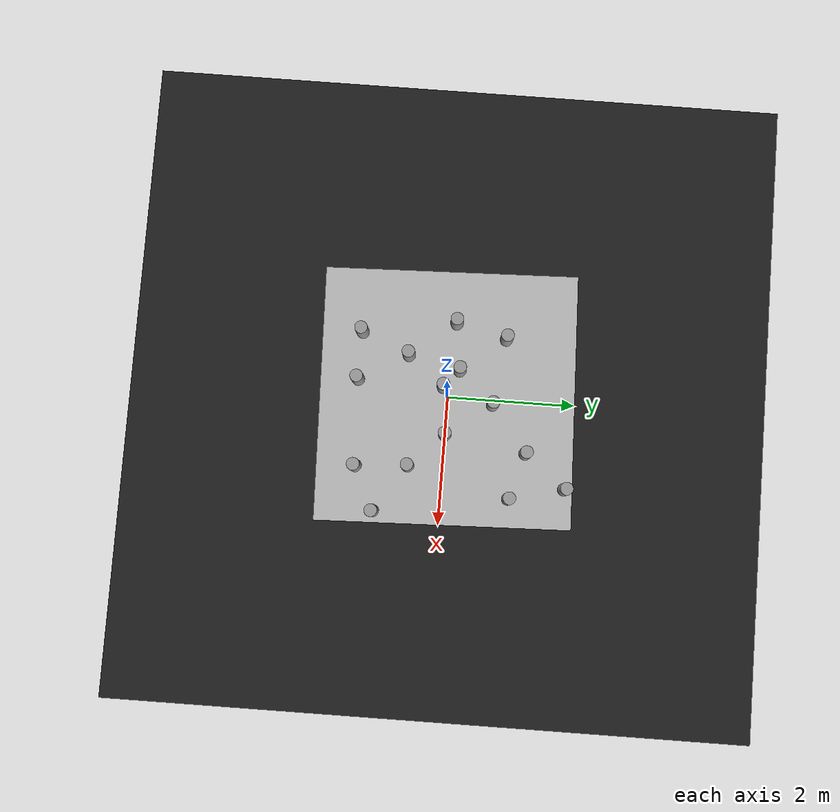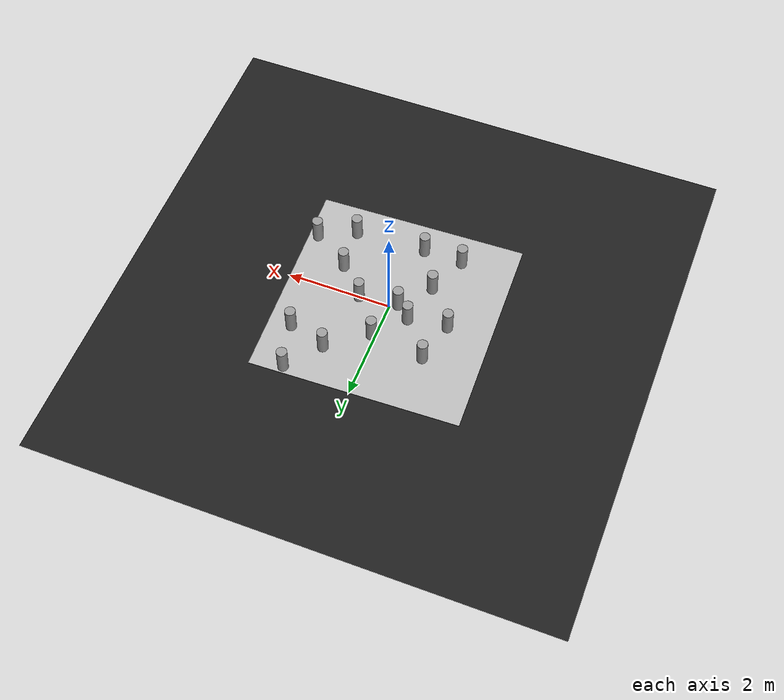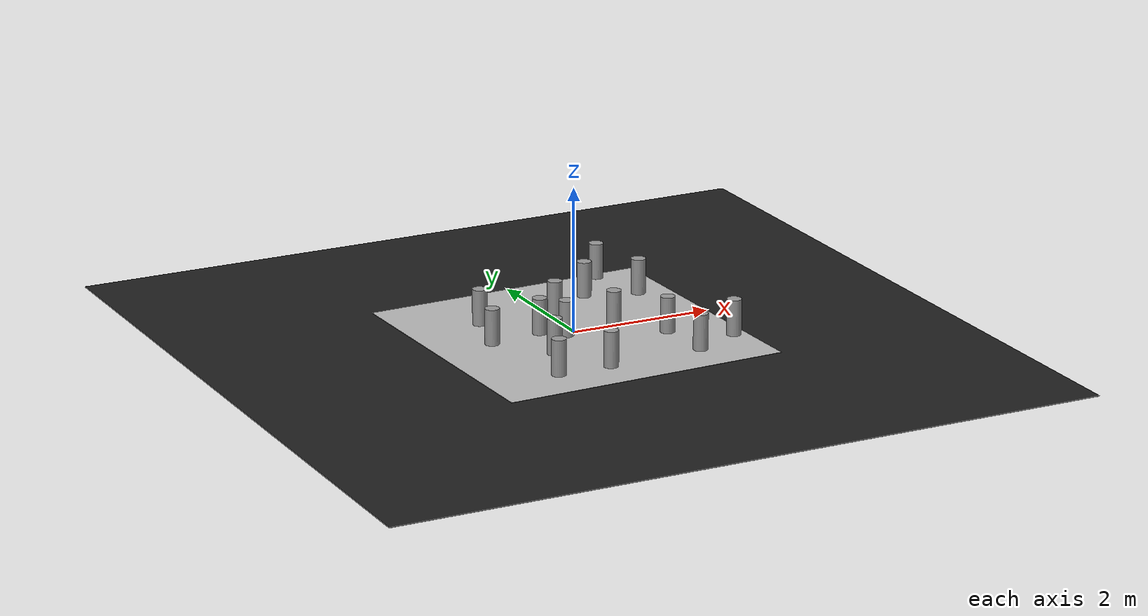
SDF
<sdf version="1.6">
 <world name="default">
  <scene>
   <ambient>0 0 0 1</ambient>
   <shadows>0</shadows>
   <grid>0</grid>
   <background>0.7 0.7 0.7 1</background>
  </scene>
  <model name="course">
   <static>1</static>
   <link name="course_link">
    <collision name="course_collision">
     <geometry><plane><normal>0 0 1</normal><size>4 4</size></plane></geometry>
     <surface><friction><ode><mu>100</mu><mu2>50</mu2></ode></friction></surface>
    </collision>
    <visual name="course_visual">
     <cast_shadows>0</cast_shadows>
     <geometry><plane><normal>0 0 1</normal><size>4 4</size></plane></geometry>
     <material>
      <script>
       <uri>model://turtlebot3_autorace/course/materials/scripts</uri>
       <uri>model://turtlebot3_autorace/course/materials/textures</uri>
       <name>course</name>
      </script>
     </material>
    </visual>
   </link>
   <pose>0 0 0 0 0 -1.54</pose>
  </model>
  <light name="sun" type="directional">
   <pose>0 0 10 0 -0 0</pose>
   <diffuse>0.8 0.8 0.8 1</diffuse>
   <specular>0.1 0.1 0.1 1</specular>
   <attenuation>
    <range>1000</range>
    <constant>0.9</constant>
    <linear>0.01</linear>
    <quadratic>0.001</quadratic>
   </attenuation>
   <direction>-0.5 0.5 -1</direction>
  </light>
  <model name="ground2">
   <pose>0 0 -0.1 0 -0 0</pose>
   <static>1</static>
   <link name="ground">
    <collision name="ground_coll"><geometry><box><size>8 8 0.01</size></box></geometry></collision>
    <visual name="ground_vis">
     <geometry><box><size>10 10 0.01</size></box></geometry>
     <material>
      <script><uri>file://media/materials/scripts/gazebo.material</uri><name>Gazebo/FlatBlack</name></script>
     </material>
    </visual>
   </link>
  </model>
  <gravity>0 0 -9.8</gravity>
  <magnetic_field>6e-06 2.3e-05 -4.2e-05</magnetic_field>
  <atmosphere type="adiabatic"/>
  <physics name="default_physics" default="0" type="ode">
   <max_step_size>0.001</max_step_size>
   <real_time_factor>1</real_time_factor>
   <real_time_update_rate>1000</real_time_update_rate>
  </physics>
  <spherical_coordinates>
   <surface_model>EARTH_WGS84</surface_model>
   <latitude_deg>0</latitude_deg>
   <longitude_deg>0</longitude_deg>
   <elevation>0</elevation>
   <heading_deg>0</heading_deg>
  </spherical_coordinates>
  <light name="user_point_light_2" type="point">
   <pose>-0.948146 0.604519 1 0 -0 0</pose>
   <diffuse>0.5 0.5 0.5 1</diffuse>
   <specular>0.1 0.1 0.1 1</specular>
   <attenuation>
    <range>20</range>
    <constant>0.5</constant>
    <linear>0.01</linear>
    <quadratic>0.001</quadratic>
   </attenuation>
   <cast_shadows>0</cast_shadows>
   <direction>0 0 -1</direction>
  </light>
  <light name="user_point_light_6" type="point">
   <pose>1.63854 1.69565 1 0 -0 0</pose>
   <diffuse>0.5 0.5 0.5 1</diffuse>
   <specular>0.1 0.1 0.1 1</specular>
   <attenuation>
    <range>20</range>
    <constant>0.5</constant>
    <linear>0.01</linear>
    <quadratic>0.001</quadratic>
   </attenuation>
   <cast_shadows>0</cast_shadows>
   <direction>0 0 -1</direction>
  </light>
  <light name="user_point_light_7" type="point">
   <pose>0.42 -3.31 1 0 -0 0</pose>
   <diffuse>0.5 0.5 0.5 1</diffuse>
   <specular>0.1 0.1 0.1 1</specular>
   <attenuation>
    <range>20</range>
    <constant>0.5</constant>
    <linear>0.01</linear>
    <quadratic>0.001</quadratic>
   </attenuation>
   <cast_shadows>0</cast_shadows>
   <direction>0 0 -1</direction>
  </light>
  <light name="user_point_light_8" type="point">
   <pose>-1.8 1.5 1 0 -0 0</pose>
   <diffuse>0.5 0.5 0.5 1</diffuse>
   <specular>0.1 0.1 0.1 1</specular>
   <attenuation>
    <range>20</range>
    <constant>0.5</constant>
    <linear>0.01</linear>
    <quadratic>0.001</quadratic>
   </attenuation>
   <cast_shadows>0</cast_shadows>
   <direction>0 0 -1</direction>
  </light>
  <model name="tunnel_occ_2_1">
   <link name="link_0_clone_clone">
    <pose>0.42322 -0.212034 0.25 0 -0 0</pose>
    <inertial>
     <mass>0.0416663</mass>
     <inertia>
      <ixx>0.00098188</ixx>
      <ixy>0</ixy>
      <ixz>0</ixz>
      <iyy>0.00098188</iyy>
      <iyz>0</iyz>
      <izz>0.00046751</izz>
     </inertia>
    </inertial>
    <visual name="visual">
     <geometry><cylinder><radius>0.1</radius><length>0.5</length></cylinder></geometry>
     <material>
      <lighting>1</lighting>
      <script><uri>file://media/materials/scripts/gazebo.material</uri><name>Gazebo/Grey</name></script>
      <ambient>0.3 0.3 0.3 1</ambient>
      <diffuse>0.7 0.7 0.7 1</diffuse>
      <specular>0.01 0.01 0.01 1</specular>
      <emissive>0 0 0 1</emissive>
      <shader type="pixel"><normal_map>__default__</normal_map></shader>
     </material>
    </visual>
    <collision name="collision">
     <geometry><cylinder><radius>0.1</radius><length>0.46418</length></cylinder></geometry>
     <surface>
      <friction>
       <ode><mu>1</mu><mu2>1</mu2><fdir1>0 0 0</fdir1><slip1>0</slip1><slip2>0</slip2></ode>
       <torsional>
        <coefficient>1</coefficient>
        <patch_radius>0</patch_radius>
        <surface_radius>0</surface_radius>
        <use_patch_radius>1</use_patch_radius>
        <ode><slip>0</slip></ode>
       </torsional>
      </friction>
      <bounce><restitution_coefficient>0</restitution_coefficient><threshold>1e+06</threshold></bounce>
      <contact>
       <collide_without_contact>0</collide_without_contact>
       <collide_without_contact_bitmask>1</collide_without_contact_bitmask>
       <collide_bitmask>1</collide_bitmask>
       <ode>
        <soft_cfm>0</soft_cfm>
        <soft_erp>0.2</soft_erp>
        <kp>1e+13</kp>
        <kd>1</kd>
        <max_vel>0.01</max_vel>
        <min_depth>0</min_depth>
       </ode>
       <bullet>
        <split_impulse>1</split_impulse>
        <split_impulse_penetration_threshold>-0.01</split_impulse_penetration_threshold>
        <soft_cfm>0</soft_cfm>
        <soft_erp>0.2</soft_erp>
        <kp>1e+13</kp>
        <kd>1</kd>
       </bullet>
      </contact>
     </surface>
    </collision>
   </link>
   <link name="link_0_clone_clone_clone">
    <pose>-0.323729 -0.287563 0.25 0 -0 0</pose>
    <inertial>
     <mass>0.0416663</mass>
     <inertia>
      <ixx>0.00098188</ixx>
      <ixy>0</ixy>
      <ixz>0</ixz>
      <iyy>0.00098188</iyy>
      <iyz>0</iyz>
      <izz>0.00046751</izz>
     </inertia>
    </inertial>
    <visual name="visual">
     <geometry><cylinder><radius>0.1</radius><length>0.5</length></cylinder></geometry>
     <material>
      <lighting>1</lighting>
      <script><uri>file://media/materials/scripts/gazebo.material</uri><name>Gazebo/Grey</name></script>
      <ambient>0.3 0.3 0.3 1</ambient>
      <diffuse>0.7 0.7 0.7 1</diffuse>
      <specular>0.01 0.01 0.01 1</specular>
      <emissive>0 0 0 1</emissive>
      <shader type="pixel"><normal_map>__default__</normal_map></shader>
     </material>
    </visual>
    <collision name="collision">
     <geometry><cylinder><radius>0.1</radius><length>0.46418</length></cylinder></geometry>
     <surface>
      <friction>
       <ode><mu>1</mu><mu2>1</mu2><fdir1>0 0 0</fdir1><slip1>0</slip1><slip2>0</slip2></ode>
       <torsional>
        <coefficient>1</coefficient>
        <patch_radius>0</patch_radius>
        <surface_radius>0</surface_radius>
        <use_patch_radius>1</use_patch_radius>
        <ode><slip>0</slip></ode>
       </torsional>
      </friction>
      <bounce><restitution_coefficient>0</restitution_coefficient><threshold>1e+06</threshold></bounce>
      <contact>
       <collide_without_contact>0</collide_without_contact>
       <collide_without_contact_bitmask>1</collide_without_contact_bitmask>
       <collide_bitmask>1</collide_bitmask>
       <ode>
        <soft_cfm>0</soft_cfm>
        <soft_erp>0.2</soft_erp>
        <kp>1e+13</kp>
        <kd>1</kd>
        <max_vel>0.01</max_vel>
        <min_depth>0</min_depth>
       </ode>
       <bullet>
        <split_impulse>1</split_impulse>
        <split_impulse_penetration_threshold>-0.01</split_impulse_penetration_threshold>
        <soft_cfm>0</soft_cfm>
        <soft_erp>0.2</soft_erp>
        <kp>1e+13</kp>
        <kd>1</kd>
       </bullet>
      </contact>
     </surface>
    </collision>
   </link>
   <link name="link_0_clone_clone_clone_clone">
    <pose>-0.099492 0.499594 0.25 0 -0 0</pose>
    <inertial>
     <mass>0.0416663</mass>
     <inertia>
      <ixx>0.00098188</ixx>
      <ixy>0</ixy>
      <ixz>0</ixz>
      <iyy>0.00098188</iyy>
      <iyz>0</iyz>
      <izz>0.00046751</izz>
     </inertia>
    </inertial>
    <visual name="visual">
     <geometry><cylinder><radius>0.1</radius><length>0.5</length></cylinder></geometry>
     <material>
      <lighting>1</lighting>
      <script><uri>file://media/materials/scripts/gazebo.material</uri><name>Gazebo/Grey</name></script>
      <ambient>0.3 0.3 0.3 1</ambient>
      <diffuse>0.7 0.7 0.7 1</diffuse>
      <specular>0.01 0.01 0.01 1</specular>
      <emissive>0 0 0 1</emissive>
      <shader type="pixel"><normal_map>__default__</normal_map></shader>
     </material>
    </visual>
    <collision name="collision">
     <geometry><cylinder><radius>0.1</radius><length>0.46418</length></cylinder></geometry>
     <surface>
      <friction>
       <ode><mu>1</mu><mu2>1</mu2><fdir1>0 0 0</fdir1><slip1>0</slip1><slip2>0</slip2></ode>
       <torsional>
        <coefficient>1</coefficient>
        <patch_radius>0</patch_radius>
        <surface_radius>0</surface_radius>
        <use_patch_radius>1</use_patch_radius>
        <ode><slip>0</slip></ode>
       </torsional>
      </friction>
      <bounce><restitution_coefficient>0</restitution_coefficient><threshold>1e+06</threshold></bounce>
      <contact>
       <collide_without_contact>0</collide_without_contact>
       <collide_without_contact_bitmask>1</collide_without_contact_bitmask>
       <collide_bitmask>1</collide_bitmask>
       <ode>
        <soft_cfm>0</soft_cfm>
        <soft_erp>0.2</soft_erp>
        <kp>1e+13</kp>
        <kd>1</kd>
        <max_vel>0.01</max_vel>
        <min_depth>0</min_depth>
       </ode>
       <bullet>
        <split_impulse>1</split_impulse>
        <split_impulse_penetration_threshold>-0.01</split_impulse_penetration_threshold>
        <soft_cfm>0</soft_cfm>
        <soft_erp>0.2</soft_erp>
        <kp>1e+13</kp>
        <kd>1</kd>
       </bullet>
      </contact>
     </surface>
    </collision>
   </link>
   <static>1</static>
   <pose>0.173078 0.217761 0 0 -0 0</pose>
  </model>
  <audio><device>default</device></audio>
  <model name="tunnel_occ_2_1_clone">
   <link name="link_0_clone_clone">
    <pose>0.42322 -0.212034 0.25 0 -0 0</pose>
    <inertial>
     <mass>0.0416663</mass>
     <inertia>
      <ixx>0.00098188</ixx>
      <ixy>0</ixy>
      <ixz>0</ixz>
      <iyy>0.00098188</iyy>
      <iyz>0</iyz>
      <izz>0.00046751</izz>
     </inertia>
    </inertial>
    <visual name="visual">
     <geometry><cylinder><radius>0.1</radius><length>0.5</length></cylinder></geometry>
     <material>
      <lighting>1</lighting>
      <script><uri>file://media/materials/scripts/gazebo.material</uri><name>Gazebo/Grey</name></script>
      <ambient>0.3 0.3 0.3 1</ambient>
      <diffuse>0.7 0.7 0.7 1</diffuse>
      <specular>0.01 0.01 0.01 1</specular>
      <emissive>0 0 0 1</emissive>
      <shader type="pixel"><normal_map>__default__</normal_map></shader>
     </material>
    </visual>
    <collision name="collision">
     <geometry><cylinder><radius>0.1</radius><length>0.46418</length></cylinder></geometry>
     <surface>
      <friction>
       <ode><mu>1</mu><mu2>1</mu2><fdir1>0 0 0</fdir1><slip1>0</slip1><slip2>0</slip2></ode>
       <torsional>
        <coefficient>1</coefficient>
        <patch_radius>0</patch_radius>
        <surface_radius>0</surface_radius>
        <use_patch_radius>1</use_patch_radius>
        <ode><slip>0</slip></ode>
       </torsional>
      </friction>
      <bounce><restitution_coefficient>0</restitution_coefficient><threshold>1e+06</threshold></bounce>
      <contact>
       <collide_without_contact>0</collide_without_contact>
       <collide_without_contact_bitmask>1</collide_without_contact_bitmask>
       <collide_bitmask>1</collide_bitmask>
       <ode>
        <soft_cfm>0</soft_cfm>
        <soft_erp>0.2</soft_erp>
        <kp>1e+13</kp>
        <kd>1</kd>
        <max_vel>0.01</max_vel>
        <min_depth>0</min_depth>
       </ode>
       <bullet>
        <split_impulse>1</split_impulse>
        <split_impulse_penetration_threshold>-0.01</split_impulse_penetration_threshold>
        <soft_cfm>0</soft_cfm>
        <soft_erp>0.2</soft_erp>
        <kp>1e+13</kp>
        <kd>1</kd>
       </bullet>
      </contact>
     </surface>
    </collision>
   </link>
   <link name="link_0_clone_clone_clone">
    <pose>-0.323729 -0.287563 0.25 0 -0 0</pose>
    <inertial>
     <mass>0.0416663</mass>
     <inertia>
      <ixx>0.00098188</ixx>
      <ixy>0</ixy>
      <ixz>0</ixz>
      <iyy>0.00098188</iyy>
      <iyz>0</iyz>
      <izz>0.00046751</izz>
     </inertia>
    </inertial>
    <visual name="visual">
     <geometry><cylinder><radius>0.1</radius><length>0.5</length></cylinder></geometry>
     <material>
      <lighting>1</lighting>
      <script><uri>file://media/materials/scripts/gazebo.material</uri><name>Gazebo/Grey</name></script>
      <ambient>0.3 0.3 0.3 1</ambient>
      <diffuse>0.7 0.7 0.7 1</diffuse>
      <specular>0.01 0.01 0.01 1</specular>
      <emissive>0 0 0 1</emissive>
      <shader type="pixel"><normal_map>__default__</normal_map></shader>
     </material>
    </visual>
    <collision name="collision">
     <geometry><cylinder><radius>0.1</radius><length>0.46418</length></cylinder></geometry>
     <surface>
      <friction>
       <ode><mu>1</mu><mu2>1</mu2><fdir1>0 0 0</fdir1><slip1>0</slip1><slip2>0</slip2></ode>
       <torsional>
        <coefficient>1</coefficient>
        <patch_radius>0</patch_radius>
        <surface_radius>0</surface_radius>
        <use_patch_radius>1</use_patch_radius>
        <ode><slip>0</slip></ode>
       </torsional>
      </friction>
      <bounce><restitution_coefficient>0</restitution_coefficient><threshold>1e+06</threshold></bounce>
      <contact>
       <collide_without_contact>0</collide_without_contact>
       <collide_without_contact_bitmask>1</collide_without_contact_bitmask>
       <collide_bitmask>1</collide_bitmask>
       <ode>
        <soft_cfm>0</soft_cfm>
        <soft_erp>0.2</soft_erp>
        <kp>1e+13</kp>
        <kd>1</kd>
        <max_vel>0.01</max_vel>
        <min_depth>0</min_depth>
       </ode>
       <bullet>
        <split_impulse>1</split_impulse>
        <split_impulse_penetration_threshold>-0.01</split_impulse_penetration_threshold>
        <soft_cfm>0</soft_cfm>
        <soft_erp>0.2</soft_erp>
        <kp>1e+13</kp>
        <kd>1</kd>
       </bullet>
      </contact>
     </surface>
    </collision>
   </link>
   <link name="link_0_clone_clone_clone_clone">
    <pose>-0.099492 0.499594 0.25 0 -0 0</pose>
    <inertial>
     <mass>0.0416663</mass>
     <inertia>
      <ixx>0.00098188</ixx>
      <ixy>0</ixy>
      <ixz>0</ixz>
      <iyy>0.00098188</iyy>
      <iyz>0</iyz>
      <izz>0.00046751</izz>
     </inertia>
    </inertial>
    <visual name="visual">
     <geometry><cylinder><radius>0.1</radius><length>0.5</length></cylinder></geometry>
     <material>
      <lighting>1</lighting>
      <script><uri>file://media/materials/scripts/gazebo.material</uri><name>Gazebo/Grey</name></script>
      <ambient>0.3 0.3 0.3 1</ambient>
      <diffuse>0.7 0.7 0.7 1</diffuse>
      <specular>0.01 0.01 0.01 1</specular>
      <emissive>0 0 0 1</emissive>
      <shader type="pixel"><normal_map>__default__</normal_map></shader>
     </material>
    </visual>
    <collision name="collision">
     <geometry><cylinder><radius>0.1</radius><length>0.46418</length></cylinder></geometry>
     <surface>
      <friction>
       <ode><mu>1</mu><mu2>1</mu2><fdir1>0 0 0</fdir1><slip1>0</slip1><slip2>0</slip2></ode>
       <torsional>
        <coefficient>1</coefficient>
        <patch_radius>0</patch_radius>
        <surface_radius>0</surface_radius>
        <use_patch_radius>1</use_patch_radius>
        <ode><slip>0</slip></ode>
       </torsional>
      </friction>
      <bounce><restitution_coefficient>0</restitution_coefficient><threshold>1e+06</threshold></bounce>
      <contact>
       <collide_without_contact>0</collide_without_contact>
       <collide_without_contact_bitmask>1</collide_without_contact_bitmask>
       <collide_bitmask>1</collide_bitmask>
       <ode>
        <soft_cfm>0</soft_cfm>
        <soft_erp>0.2</soft_erp>
        <kp>1e+13</kp>
        <kd>1</kd>
        <max_vel>0.01</max_vel>
        <min_depth>0</min_depth>
       </ode>
       <bullet>
        <split_impulse>1</split_impulse>
        <split_impulse_penetration_threshold>-0.01</split_impulse_penetration_threshold>
        <soft_cfm>0</soft_cfm>
        <soft_erp>0.2</soft_erp>
        <kp>1e+13</kp>
        <kd>1</kd>
       </bullet>
      </contact>
     </surface>
    </collision>
   </link>
   <static>1</static>
   <pose>-0.575488 -1.14887 0 0 0 -0.119062</pose>
  </model>
  <model name="tunnel_occ_2_1_clone_0">
   <link name="link_0_clone_clone">
    <pose>0.42322 -0.212034 0.25 0 -0 0</pose>
    <inertial>
     <mass>0.0416663</mass>
     <inertia>
      <ixx>0.00098188</ixx>
      <ixy>0</ixy>
      <ixz>0</ixz>
      <iyy>0.00098188</iyy>
      <iyz>0</iyz>
      <izz>0.00046751</izz>
     </inertia>
    </inertial>
    <visual name="visual">
     <geometry><cylinder><radius>0.1</radius><length>0.5</length></cylinder></geometry>
     <material>
      <lighting>1</lighting>
      <script><uri>file://media/materials/scripts/gazebo.material</uri><name>Gazebo/Grey</name></script>
      <ambient>0.3 0.3 0.3 1</ambient>
      <diffuse>0.7 0.7 0.7 1</diffuse>
      <specular>0.01 0.01 0.01 1</specular>
      <emissive>0 0 0 1</emissive>
      <shader type="pixel"><normal_map>__default__</normal_map></shader>
     </material>
    </visual>
    <collision name="collision">
     <geometry><cylinder><radius>0.1</radius><length>0.46418</length></cylinder></geometry>
     <surface>
      <friction>
       <ode><mu>1</mu><mu2>1</mu2><fdir1>0 0 0</fdir1><slip1>0</slip1><slip2>0</slip2></ode>
       <torsional>
        <coefficient>1</coefficient>
        <patch_radius>0</patch_radius>
        <surface_radius>0</surface_radius>
        <use_patch_radius>1</use_patch_radius>
        <ode><slip>0</slip></ode>
       </torsional>
      </friction>
      <bounce><restitution_coefficient>0</restitution_coefficient><threshold>1e+06</threshold></bounce>
      <contact>
       <collide_without_contact>0</collide_without_contact>
       <collide_without_contact_bitmask>1</collide_without_contact_bitmask>
       <collide_bitmask>1</collide_bitmask>
       <ode>
        <soft_cfm>0</soft_cfm>
        <soft_erp>0.2</soft_erp>
        <kp>1e+13</kp>
        <kd>1</kd>
        <max_vel>0.01</max_vel>
        <min_depth>0</min_depth>
       </ode>
       <bullet>
        <split_impulse>1</split_impulse>
        <split_impulse_penetration_threshold>-0.01</split_impulse_penetration_threshold>
        <soft_cfm>0</soft_cfm>
        <soft_erp>0.2</soft_erp>
        <kp>1e+13</kp>
        <kd>1</kd>
       </bullet>
      </contact>
     </surface>
    </collision>
   </link>
   <link name="link_0_clone_clone_clone">
    <pose>-0.323729 -0.287563 0.25 0 -0 0</pose>
    <inertial>
     <mass>0.0416663</mass>
     <inertia>
      <ixx>0.00098188</ixx>
      <ixy>0</ixy>
      <ixz>0</ixz>
      <iyy>0.00098188</iyy>
      <iyz>0</iyz>
      <izz>0.00046751</izz>
     </inertia>
    </inertial>
    <visual name="visual">
     <geometry><cylinder><radius>0.1</radius><length>0.5</length></cylinder></geometry>
     <material>
      <lighting>1</lighting>
      <script><uri>file://media/materials/scripts/gazebo.material</uri><name>Gazebo/Grey</name></script>
      <ambient>0.3 0.3 0.3 1</ambient>
      <diffuse>0.7 0.7 0.7 1</diffuse>
      <specular>0.01 0.01 0.01 1</specular>
      <emissive>0 0 0 1</emissive>
      <shader type="pixel"><normal_map>__default__</normal_map></shader>
     </material>
    </visual>
    <collision name="collision">
     <geometry><cylinder><radius>0.1</radius><length>0.46418</length></cylinder></geometry>
     <surface>
      <friction>
       <ode><mu>1</mu><mu2>1</mu2><fdir1>0 0 0</fdir1><slip1>0</slip1><slip2>0</slip2></ode>
       <torsional>
        <coefficient>1</coefficient>
        <patch_radius>0</patch_radius>
        <surface_radius>0</surface_radius>
        <use_patch_radius>1</use_patch_radius>
        <ode><slip>0</slip></ode>
       </torsional>
      </friction>
      <bounce><restitution_coefficient>0</restitution_coefficient><threshold>1e+06</threshold></bounce>
      <contact>
       <collide_without_contact>0</collide_without_contact>
       <collide_without_contact_bitmask>1</collide_without_contact_bitmask>
       <collide_bitmask>1</collide_bitmask>
       <ode>
        <soft_cfm>0</soft_cfm>
        <soft_erp>0.2</soft_erp>
        <kp>1e+13</kp>
        <kd>1</kd>
        <max_vel>0.01</max_vel>
        <min_depth>0</min_depth>
       </ode>
       <bullet>
        <split_impulse>1</split_impulse>
        <split_impulse_penetration_threshold>-0.01</split_impulse_penetration_threshold>
        <soft_cfm>0</soft_cfm>
        <soft_erp>0.2</soft_erp>
        <kp>1e+13</kp>
        <kd>1</kd>
       </bullet>
      </contact>
     </surface>
    </collision>
   </link>
   <link name="link_0_clone_clone_clone_clone">
    <pose>-0.099492 0.499594 0.25 0 -0 0</pose>
    <inertial>
     <mass>0.0416663</mass>
     <inertia>
      <ixx>0.00098188</ixx>
      <ixy>0</ixy>
      <ixz>0</ixz>
      <iyy>0.00098188</iyy>
      <iyz>0</iyz>
      <izz>0.00046751</izz>
     </inertia>
    </inertial>
    <visual name="visual">
     <geometry><cylinder><radius>0.1</radius><length>0.5</length></cylinder></geometry>
     <material>
      <lighting>1</lighting>
      <script><uri>file://media/materials/scripts/gazebo.material</uri><name>Gazebo/Grey</name></script>
      <ambient>0.3 0.3 0.3 1</ambient>
      <diffuse>0.7 0.7 0.7 1</diffuse>
      <specular>0.01 0.01 0.01 1</specular>
      <emissive>0 0 0 1</emissive>
      <shader type="pixel"><normal_map>__default__</normal_map></shader>
     </material>
    </visual>
    <collision name="collision">
     <geometry><cylinder><radius>0.1</radius><length>0.46418</length></cylinder></geometry>
     <surface>
      <friction>
       <ode><mu>1</mu><mu2>1</mu2><fdir1>0 0 0</fdir1><slip1>0</slip1><slip2>0</slip2></ode>
       <torsional>
        <coefficient>1</coefficient>
        <patch_radius>0</patch_radius>
        <surface_radius>0</surface_radius>
        <use_patch_radius>1</use_patch_radius>
        <ode><slip>0</slip></ode>
       </torsional>
      </friction>
      <bounce><restitution_coefficient>0</restitution_coefficient><threshold>1e+06</threshold></bounce>
      <contact>
       <collide_without_contact>0</collide_without_contact>
       <collide_without_contact_bitmask>1</collide_without_contact_bitmask>
       <collide_bitmask>1</collide_bitmask>
       <ode>
        <soft_cfm>0</soft_cfm>
        <soft_erp>0.2</soft_erp>
        <kp>1e+13</kp>
        <kd>1</kd>
        <max_vel>0.01</max_vel>
        <min_depth>0</min_depth>
       </ode>
       <bullet>
        <split_impulse>1</split_impulse>
        <split_impulse_penetration_threshold>-0.01</split_impulse_penetration_threshold>
        <soft_cfm>0</soft_cfm>
        <soft_erp>0.2</soft_erp>
        <kp>1e+13</kp>
        <kd>1</kd>
       </bullet>
      </contact>
     </surface>
    </collision>
   </link>
   <static>1</static>
   <pose>-0.855985 0.370027 0 0 -0 0.029428</pose>
  </model>
  <model name="tunnel_occ_2_1_clone_1">
   <link name="link_0_clone_clone">
    <pose>0.42322 -0.212034 0.25 0 -0 0</pose>
    <inertial>
     <mass>0.0416663</mass>
     <inertia>
      <ixx>0.00098188</ixx>
      <ixy>0</ixy>
      <ixz>0</ixz>
      <iyy>0.00098188</iyy>
      <iyz>0</iyz>
      <izz>0.00046751</izz>
     </inertia>
    </inertial>
    <visual name="visual">
     <geometry><cylinder><radius>0.1</radius><length>0.5</length></cylinder></geometry>
     <material>
      <lighting>1</lighting>
      <script><uri>file://media/materials/scripts/gazebo.material</uri><name>Gazebo/Grey</name></script>
      <ambient>0.3 0.3 0.3 1</ambient>
      <diffuse>0.7 0.7 0.7 1</diffuse>
      <specular>0.01 0.01 0.01 1</specular>
      <emissive>0 0 0 1</emissive>
      <shader type="pixel"><normal_map>__default__</normal_map></shader>
     </material>
    </visual>
    <collision name="collision">
     <geometry><cylinder><radius>0.1</radius><length>0.46418</length></cylinder></geometry>
     <surface>
      <friction>
       <ode><mu>1</mu><mu2>1</mu2><fdir1>0 0 0</fdir1><slip1>0</slip1><slip2>0</slip2></ode>
       <torsional>
        <coefficient>1</coefficient>
        <patch_radius>0</patch_radius>
        <surface_radius>0</surface_radius>
        <use_patch_radius>1</use_patch_radius>
        <ode><slip>0</slip></ode>
       </torsional>
      </friction>
      <bounce><restitution_coefficient>0</restitution_coefficient><threshold>1e+06</threshold></bounce>
      <contact>
       <collide_without_contact>0</collide_without_contact>
       <collide_without_contact_bitmask>1</collide_without_contact_bitmask>
       <collide_bitmask>1</collide_bitmask>
       <ode>
        <soft_cfm>0</soft_cfm>
        <soft_erp>0.2</soft_erp>
        <kp>1e+13</kp>
        <kd>1</kd>
        <max_vel>0.01</max_vel>
        <min_depth>0</min_depth>
       </ode>
       <bullet>
        <split_impulse>1</split_impulse>
        <split_impulse_penetration_threshold>-0.01</split_impulse_penetration_threshold>
        <soft_cfm>0</soft_cfm>
        <soft_erp>0.2</soft_erp>
        <kp>1e+13</kp>
        <kd>1</kd>
       </bullet>
      </contact>
     </surface>
    </collision>
   </link>
   <link name="link_0_clone_clone_clone">
    <pose>-0.323729 -0.287563 0.25 0 -0 0</pose>
    <inertial>
     <mass>0.0416663</mass>
     <inertia>
      <ixx>0.00098188</ixx>
      <ixy>0</ixy>
      <ixz>0</ixz>
      <iyy>0.00098188</iyy>
      <iyz>0</iyz>
      <izz>0.00046751</izz>
     </inertia>
    </inertial>
    <visual name="visual">
     <geometry><cylinder><radius>0.1</radius><length>0.5</length></cylinder></geometry>
     <material>
      <lighting>1</lighting>
      <script><uri>file://media/materials/scripts/gazebo.material</uri><name>Gazebo/Grey</name></script>
      <ambient>0.3 0.3 0.3 1</ambient>
      <diffuse>0.7 0.7 0.7 1</diffuse>
      <specular>0.01 0.01 0.01 1</specular>
      <emissive>0 0 0 1</emissive>
      <shader type="pixel"><normal_map>__default__</normal_map></shader>
     </material>
    </visual>
    <collision name="collision">
     <geometry><cylinder><radius>0.1</radius><length>0.46418</length></cylinder></geometry>
     <surface>
      <friction>
       <ode><mu>1</mu><mu2>1</mu2><fdir1>0 0 0</fdir1><slip1>0</slip1><slip2>0</slip2></ode>
       <torsional>
        <coefficient>1</coefficient>
        <patch_radius>0</patch_radius>
        <surface_radius>0</surface_radius>
        <use_patch_radius>1</use_patch_radius>
        <ode><slip>0</slip></ode>
       </torsional>
      </friction>
      <bounce><restitution_coefficient>0</restitution_coefficient><threshold>1e+06</threshold></bounce>
      <contact>
       <collide_without_contact>0</collide_without_contact>
       <collide_without_contact_bitmask>1</collide_without_contact_bitmask>
       <collide_bitmask>1</collide_bitmask>
       <ode>
        <soft_cfm>0</soft_cfm>
        <soft_erp>0.2</soft_erp>
        <kp>1e+13</kp>
        <kd>1</kd>
        <max_vel>0.01</max_vel>
        <min_depth>0</min_depth>
       </ode>
       <bullet>
        <split_impulse>1</split_impulse>
        <split_impulse_penetration_threshold>-0.01</split_impulse_penetration_threshold>
        <soft_cfm>0</soft_cfm>
        <soft_erp>0.2</soft_erp>
        <kp>1e+13</kp>
        <kd>1</kd>
       </bullet>
      </contact>
     </surface>
    </collision>
   </link>
   <link name="link_0_clone_clone_clone_clone">
    <pose>-0.099492 0.499594 0.25 0 -0 0</pose>
    <inertial>
     <mass>0.0416663</mass>
     <inertia>
      <ixx>0.00098188</ixx>
      <ixy>0</ixy>
      <ixz>0</ixz>
      <iyy>0.00098188</iyy>
      <iyz>0</iyz>
      <izz>0.00046751</izz>
     </inertia>
    </inertial>
    <visual name="visual">
     <geometry><cylinder><radius>0.1</radius><length>0.5</length></cylinder></geometry>
     <material>
      <lighting>1</lighting>
      <script><uri>file://media/materials/scripts/gazebo.material</uri><name>Gazebo/Grey</name></script>
      <ambient>0.3 0.3 0.3 1</ambient>
      <diffuse>0.7 0.7 0.7 1</diffuse>
      <specular>0.01 0.01 0.01 1</specular>
      <emissive>0 0 0 1</emissive>
      <shader type="pixel"><normal_map>__default__</normal_map></shader>
     </material>
    </visual>
    <collision name="collision">
     <geometry><cylinder><radius>0.1</radius><length>0.46418</length></cylinder></geometry>
     <surface>
      <friction>
       <ode><mu>1</mu><mu2>1</mu2><fdir1>0 0 0</fdir1><slip1>0</slip1><slip2>0</slip2></ode>
       <torsional>
        <coefficient>1</coefficient>
        <patch_radius>0</patch_radius>
        <surface_radius>0</surface_radius>
        <use_patch_radius>1</use_patch_radius>
        <ode><slip>0</slip></ode>
       </torsional>
      </friction>
      <bounce><restitution_coefficient>0</restitution_coefficient><threshold>1e+06</threshold></bounce>
      <contact>
       <collide_without_contact>0</collide_without_contact>
       <collide_without_contact_bitmask>1</collide_without_contact_bitmask>
       <collide_bitmask>1</collide_bitmask>
       <ode>
        <soft_cfm>0</soft_cfm>
        <soft_erp>0.2</soft_erp>
        <kp>1e+13</kp>
        <kd>1</kd>
        <max_vel>0.01</max_vel>
        <min_depth>0</min_depth>
       </ode>
       <bullet>
        <split_impulse>1</split_impulse>
        <split_impulse_penetration_threshold>-0.01</split_impulse_penetration_threshold>
        <soft_cfm>0</soft_cfm>
        <soft_erp>0.2</soft_erp>
        <kp>1e+13</kp>
        <kd>1</kd>
       </bullet>
      </contact>
     </surface>
    </collision>
   </link>
   <static>1</static>
   <pose>1.38007 -0.973246 0 0 -0 0.343328</pose>
  </model>
  <model name="tunnel_occ_2_1_clone_2">
   <link name="link_0_clone_clone">
    <pose>0.42322 -0.212034 0.25 0 -0 0</pose>
    <inertial>
     <mass>0.0416663</mass>
     <inertia>
      <ixx>0.00098188</ixx>
      <ixy>0</ixy>
      <ixz>0</ixz>
      <iyy>0.00098188</iyy>
      <iyz>0</iyz>
      <izz>0.00046751</izz>
     </inertia>
    </inertial>
    <visual name="visual">
     <geometry><cylinder><radius>0.1</radius><length>0.5</length></cylinder></geometry>
     <material>
      <lighting>1</lighting>
      <script><uri>file://media/materials/scripts/gazebo.material</uri><name>Gazebo/Grey</name></script>
      <ambient>0.3 0.3 0.3 1</ambient>
      <diffuse>0.7 0.7 0.7 1</diffuse>
      <specular>0.01 0.01 0.01 1</specular>
      <emissive>0 0 0 1</emissive>
      <shader type="pixel"><normal_map>__default__</normal_map></shader>
     </material>
    </visual>
    <collision name="collision">
     <geometry><cylinder><radius>0.1</radius><length>0.46418</length></cylinder></geometry>
     <surface>
      <friction>
       <ode><mu>1</mu><mu2>1</mu2><fdir1>0 0 0</fdir1><slip1>0</slip1><slip2>0</slip2></ode>
       <torsional>
        <coefficient>1</coefficient>
        <patch_radius>0</patch_radius>
        <surface_radius>0</surface_radius>
        <use_patch_radius>1</use_patch_radius>
        <ode><slip>0</slip></ode>
       </torsional>
      </friction>
      <bounce><restitution_coefficient>0</restitution_coefficient><threshold>1e+06</threshold></bounce>
      <contact>
       <collide_without_contact>0</collide_without_contact>
       <collide_without_contact_bitmask>1</collide_without_contact_bitmask>
       <collide_bitmask>1</collide_bitmask>
       <ode>
        <soft_cfm>0</soft_cfm>
        <soft_erp>0.2</soft_erp>
        <kp>1e+13</kp>
        <kd>1</kd>
        <max_vel>0.01</max_vel>
        <min_depth>0</min_depth>
       </ode>
       <bullet>
        <split_impulse>1</split_impulse>
        <split_impulse_penetration_threshold>-0.01</split_impulse_penetration_threshold>
        <soft_cfm>0</soft_cfm>
        <soft_erp>0.2</soft_erp>
        <kp>1e+13</kp>
        <kd>1</kd>
       </bullet>
      </contact>
     </surface>
    </collision>
   </link>
   <link name="link_0_clone_clone_clone">
    <pose>-0.323729 -0.287563 0.25 0 -0 0</pose>
    <inertial>
     <mass>0.0416663</mass>
     <inertia>
      <ixx>0.00098188</ixx>
      <ixy>0</ixy>
      <ixz>0</ixz>
      <iyy>0.00098188</iyy>
      <iyz>0</iyz>
      <izz>0.00046751</izz>
     </inertia>
    </inertial>
    <visual name="visual">
     <geometry><cylinder><radius>0.1</radius><length>0.5</length></cylinder></geometry>
     <material>
      <lighting>1</lighting>
      <script><uri>file://media/materials/scripts/gazebo.material</uri><name>Gazebo/Grey</name></script>
      <ambient>0.3 0.3 0.3 1</ambient>
      <diffuse>0.7 0.7 0.7 1</diffuse>
      <specular>0.01 0.01 0.01 1</specular>
      <emissive>0 0 0 1</emissive>
      <shader type="pixel"><normal_map>__default__</normal_map></shader>
     </material>
    </visual>
    <collision name="collision">
     <geometry><cylinder><radius>0.1</radius><length>0.46418</length></cylinder></geometry>
     <surface>
      <friction>
       <ode><mu>1</mu><mu2>1</mu2><fdir1>0 0 0</fdir1><slip1>0</slip1><slip2>0</slip2></ode>
       <torsional>
        <coefficient>1</coefficient>
        <patch_radius>0</patch_radius>
        <surface_radius>0</surface_radius>
        <use_patch_radius>1</use_patch_radius>
        <ode><slip>0</slip></ode>
       </torsional>
      </friction>
      <bounce><restitution_coefficient>0</restitution_coefficient><threshold>1e+06</threshold></bounce>
      <contact>
       <collide_without_contact>0</collide_without_contact>
       <collide_without_contact_bitmask>1</collide_without_contact_bitmask>
       <collide_bitmask>1</collide_bitmask>
       <ode>
        <soft_cfm>0</soft_cfm>
        <soft_erp>0.2</soft_erp>
        <kp>1e+13</kp>
        <kd>1</kd>
        <max_vel>0.01</max_vel>
        <min_depth>0</min_depth>
       </ode>
       <bullet>
        <split_impulse>1</split_impulse>
        <split_impulse_penetration_threshold>-0.01</split_impulse_penetration_threshold>
        <soft_cfm>0</soft_cfm>
        <soft_erp>0.2</soft_erp>
        <kp>1e+13</kp>
        <kd>1</kd>
       </bullet>
      </contact>
     </surface>
    </collision>
   </link>
   <link name="link_0_clone_clone_clone_clone">
    <pose>-0.099492 0.499594 0.25 0 -0 0</pose>
    <inertial>
     <mass>0.0416663</mass>
     <inertia>
      <ixx>0.00098188</ixx>
      <ixy>0</ixy>
      <ixz>0</ixz>
      <iyy>0.00098188</iyy>
      <iyz>0</iyz>
      <izz>0.00046751</izz>
     </inertia>
    </inertial>
    <visual name="visual">
     <geometry><cylinder><radius>0.1</radius><length>0.5</length></cylinder></geometry>
     <material>
      <lighting>1</lighting>
      <script><uri>file://media/materials/scripts/gazebo.material</uri><name>Gazebo/Grey</name></script>
      <ambient>0.3 0.3 0.3 1</ambient>
      <diffuse>0.7 0.7 0.7 1</diffuse>
      <specular>0.01 0.01 0.01 1</specular>
      <emissive>0 0 0 1</emissive>
      <shader type="pixel"><normal_map>__default__</normal_map></shader>
     </material>
    </visual>
    <collision name="collision">
     <geometry><cylinder><radius>0.1</radius><length>0.46418</length></cylinder></geometry>
     <surface>
      <friction>
       <ode><mu>1</mu><mu2>1</mu2><fdir1>0 0 0</fdir1><slip1>0</slip1><slip2>0</slip2></ode>
       <torsional>
        <coefficient>1</coefficient>
        <patch_radius>0</patch_radius>
        <surface_radius>0</surface_radius>
        <use_patch_radius>1</use_patch_radius>
        <ode><slip>0</slip></ode>
       </torsional>
      </friction>
      <bounce><restitution_coefficient>0</restitution_coefficient><threshold>1e+06</threshold></bounce>
      <contact>
       <collide_without_contact>0</collide_without_contact>
       <collide_without_contact_bitmask>1</collide_without_contact_bitmask>
       <collide_bitmask>1</collide_bitmask>
       <ode>
        <soft_cfm>0</soft_cfm>
        <soft_erp>0.2</soft_erp>
        <kp>1e+13</kp>
        <kd>1</kd>
        <max_vel>0.01</max_vel>
        <min_depth>0</min_depth>
       </ode>
       <bullet>
        <split_impulse>1</split_impulse>
        <split_impulse_penetration_threshold>-0.01</split_impulse_penetration_threshold>
        <soft_cfm>0</soft_cfm>
        <soft_erp>0.2</soft_erp>
        <kp>1e+13</kp>
        <kd>1</kd>
       </bullet>
      </contact>
     </surface>
    </collision>
   </link>
   <static>1</static>
   <pose>1.21171 1.41536 0 0 0 -0.397634</pose>
  </model>
 </world>
</sdf>
